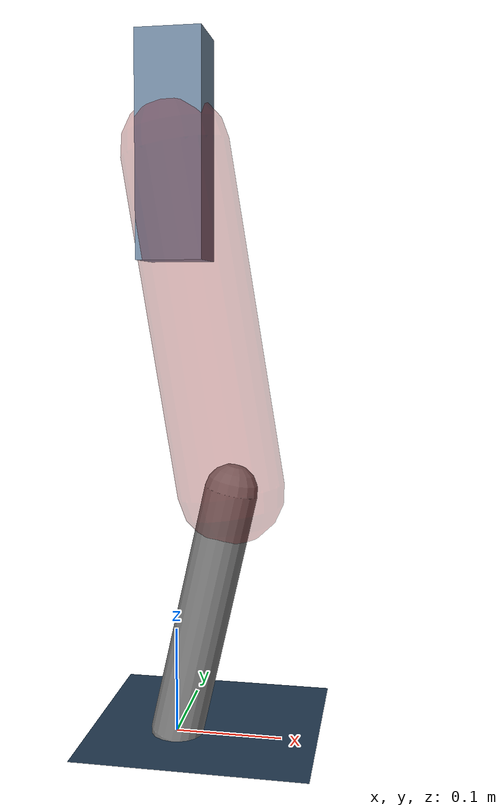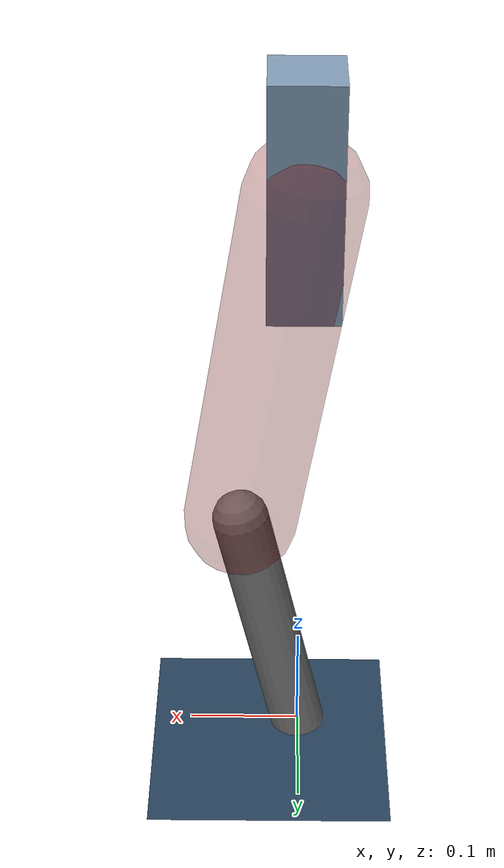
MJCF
<mujoco model="Hopper2D">
	<compiler inertiafromgeom="true" angle="radian" />
	<option timestep="0.001" integrator="implicit" cone="elliptic" solver="Newton" tolerance="1e-10" />

	<default>
		<geom contype="1" conaffinity="1" condim="3" friction="2 0.005 0.0001" solref="0.005 1" />
		<joint limited="true" damping="0.1" />
	</default>

	<asset>
		<texture name="skybox" type="skybox" builtin="gradient" rgb1=".4 .6 .8" rgb2="0 0 0" width="800" height="800" />
		<texture name="grid" type="2d" builtin="checker" rgb1=".1 .2 .3" rgb2=".2 .3 .4" width="300" height="300" mark="edge" markrgb=".2 .3 .4" />
		<material name="ground" texture="grid" texrepeat="1 1" texuniform="true" reflectance="0.1" />
		<material name="leg" rgba="0.5 0.6 0.7 1" />
	</asset>

	<worldbody>

		<geom name="floor" type="plane" size="5 5 0.25" material="ground" />

		<light directional="false" diffuse="0.8 0.8 0.8" specular="0.3 0.3 0.3" pos="0 0 2" dir="0 0 -1" />
		<light mode="targetbodycom" target="base" directional="false" diffuse="0.8 0.8 0.8" specular="0.3 0.3 0.3" pos="0 0 2" dir="0 0 -1" />

		<camera name="fixed" pos="0 -2 1" xyaxes="1 0 0 0 0 1" />
		<camera name="tracking" mode="trackcom" pos="0 -3 1" />

		<body name="root" pos="0 0 0.5461935260197728">
			<joint name="slide_x" type="slide" axis="1 0 0" range="-100 100" />
			<joint name="slide_z" type="slide" axis="0 0 1" range="0 10" />

			<body name="base" pos="0 0 0">
				<geom name="torso" type="box" size="0.03 0.03 0.1" mass="3.178" material="leg" />

				<body name="link1" pos="0 0 0" euler="0 1.4050172896489541 0">
					<joint type="hinge" axis="0 -1 0" pos="0 0 0" name="hinge1" limited="true" range="-3.14 3.14" stiffness="0" damping="0.1" />
					<geom name="thigh" type="capsule" fromto="0 0 0 0.3151791682318124 0 0" size="0.05" rgba="0.5 0 0 0.3" mass="1.030001671049075" />

					<body name="link2" pos="0.3151791682318124 0 0" euler="0 0.38329094930976243 0">
						<joint type="hinge" axis="0 -1 0" pos="0 0 0" name="hinge2" limited="true" range="-3.14 3.14" stiffness="0" damping="0.1" />
						<geom name="shank" type="capsule" fromto="0 0 0 0.24101435778796043 0 0" size="0.025" mass="0.4351114862303683" />

					</body>
				</body>
			</body>
		</body>
	</worldbody>

	<actuator>
		<motor name="torque1" joint="hinge1" ctrlrange="-174.62985215718837 174.62985215718837" ctrllimited="true" gear="1" />
		<motor name="torque2" joint="hinge2" ctrlrange="-68.00014554168526 68.00014554168526" ctrllimited="true" gear="1" />
	</actuator>
</mujoco>
